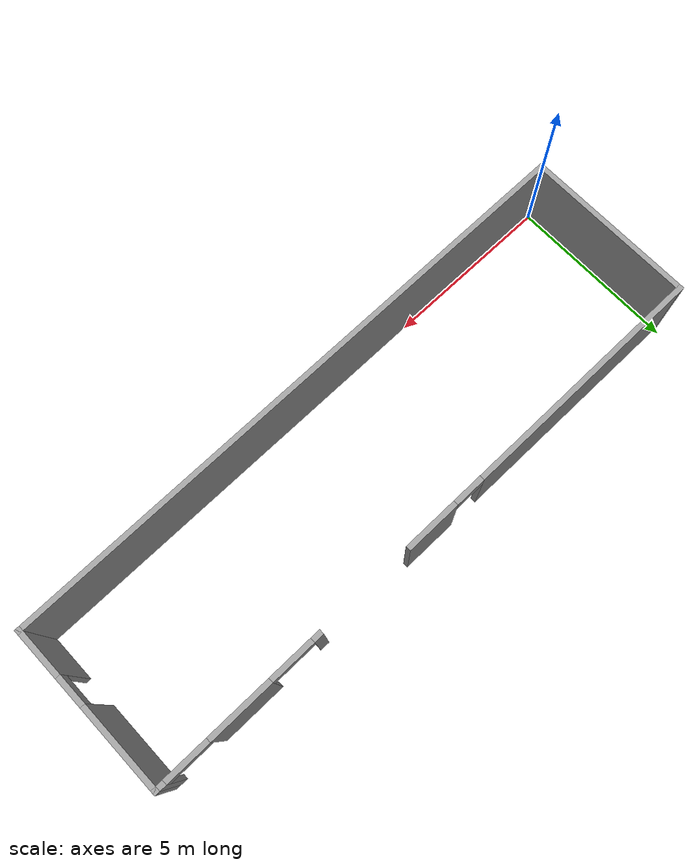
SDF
<?xml version='1.0'?>
<sdf version='1.6'>
  <model name='demoPlaceWallv3'>
    <pose frame=''>8.719 2.353 0 0 -0 0</pose>
    <link name='Wall_0'>
      <collision name='Wall_0_Collision'>
        <geometry>
          <box>
            <size>17.75 0.15 2.5</size>
          </box>
        </geometry>
        <pose frame=''>0 0 1.25 0 -0 0</pose>
      </collision>
      <visual name='Wall_0_Visual'>
        <pose frame=''>0 0 1.25 0 -0 0</pose>
        <geometry>
          <box>
            <size>17.75 0.15 2.5</size>
          </box>
        </geometry>
        <material>
          <script>
            <uri>file://media/materials/scripts/gazebo.material</uri>
            <name>Gazebo/Grey</name>
          </script>
          <ambient>1 1 1 1</ambient>
        </material>
        <meta>
          <layer>0</layer>
        </meta>
      </visual>
      <pose frame=''>0 -2.447 0 0 -0 0</pose>
    </link>
    <link name='Wall_2'>
      <collision name='Wall_2_Collision'>
        <geometry>
          <box>
            <size>5.044 0.15 2.5</size>
          </box>
        </geometry>
        <pose frame=''>0 0 1.25 0 -0 0</pose>
      </collision>
      <visual name='Wall_2_Visual'>
        <pose frame=''>0 0 1.25 0 -0 0</pose>
        <geometry>
          <box>
            <size>5.044 0.15 2.5</size>
          </box>
        </geometry>
        <material>
          <script>
            <uri>file://media/materials/scripts/gazebo.material</uri>
            <name>Gazebo/Grey</name>
          </script>
          <ambient>1 1 1 1</ambient>
        </material>
        <meta>
          <layer>0</layer>
        </meta>
      </visual>
      <pose frame=''>-8.8 0 0 0 -0 1.5708</pose>
    </link>
    <link name='Wall_4'>
      <pose frame=''>0 2.447 0 0 -0 0</pose>
      <visual name='Wall_4_Visual_0'>
        <pose frame=''>-5.222 0 1.25 0 -0 0</pose>
        <geometry>
          <box>
            <size>7.306 0.15 2.5</size>
          </box>
        </geometry>
        <material>
          <script>
            <uri>file://media/materials/scripts/gazebo.material</uri>
            <name>Gazebo/Grey</name>
          </script>
          <ambient>1 1 1 1</ambient>
        </material>
        <meta>
          <layer>0</layer>
        </meta>
      </visual>
      <collision name='Wall_4_Collision_0'>
        <geometry>
          <box>
            <size>7.306 0.15 2.5</size>
          </box>
        </geometry>
        <pose frame=''>-5.222 0 1.25 0 -0 0</pose>
      </collision>
      <visual name='Wall_4_Visual_1'>
        <pose frame=''>0.136 0 1.25 0 -0 0</pose>
        <geometry>
          <box>
            <size>1.61 0.15 2.5</size>
          </box>
        </geometry>
        <material>
          <script>
            <uri>file://media/materials/scripts/gazebo.material</uri>
            <name>Gazebo/Grey</name>
          </script>
          <ambient>1 1 1 1</ambient>
        </material>
        <meta>
          <layer>0</layer>
        </meta>
      </visual>
      <collision name='Wall_4_Collision_1'>
        <geometry>
          <box>
            <size>1.61 0.15 2.5</size>
          </box>
        </geometry>
        <pose frame=''>0.136 0 1.25 0 -0 0</pose>
      </collision>
      <visual name='Wall_4_Visual_2'>
        <pose frame=''>3.886 0 1.25 0 -0 0</pose>
        <geometry>
          <box>
            <size>0.289999 0.15 2.5</size>
          </box>
        </geometry>
        <material>
          <script>
            <uri>file://media/materials/scripts/gazebo.material</uri>
            <name>Gazebo/Grey</name>
          </script>
          <ambient>1 1 1 1</ambient>
        </material>
        <meta>
          <layer>0</layer>
        </meta>
      </visual>
      <collision name='Wall_4_Collision_2'>
        <geometry>
          <box>
            <size>0.289999 0.15 2.5</size>
          </box>
        </geometry>
        <pose frame=''>3.886 0 1.25 0 -0 0</pose>
      </collision>
      <visual name='Wall_4_Visual_3'>
        <pose frame=''>6.281 0 1.25 0 -0 0</pose>
        <geometry>
          <box>
            <size>1.9 0.15 2.5</size>
          </box>
        </geometry>
        <material>
          <script>
            <uri>file://media/materials/scripts/gazebo.material</uri>
            <name>Gazebo/Grey</name>
          </script>
          <ambient>1 1 1 1</ambient>
        </material>
        <meta>
          <layer>0</layer>
        </meta>
      </visual>
      <collision name='Wall_4_Collision_3'>
        <geometry>
          <box>
            <size>1.9 0.15 2.5</size>
          </box>
        </geometry>
        <pose frame=''>6.281 0 1.25 0 -0 0</pose>
      </collision>
      <visual name='Wall_4_Visual_4'>
        <pose frame=''>8.703 0 1.25 0 -0 0</pose>
        <geometry>
          <box>
            <size>0.343999 0.15 2.5</size>
          </box>
        </geometry>
        <material>
          <script>
            <uri>file://media/materials/scripts/gazebo.material</uri>
            <name>Gazebo/Grey</name>
          </script>
          <ambient>1 1 1 1</ambient>
        </material>
        <meta>
          <layer>0</layer>
        </meta>
      </visual>
      <collision name='Wall_4_Collision_4'>
        <geometry>
          <box>
            <size>0.343999 0.15 2.5</size>
          </box>
        </geometry>
        <pose frame=''>8.703 0 1.25 0 -0 0</pose>
      </collision>
      <visual name='Wall_4_Visual_5'>
        <pose frame=''>-1.119 0 2.25 0 -0 0</pose>
        <geometry>
          <box>
            <size>0.9 0.15 0.5</size>
          </box>
        </geometry>
        <material>
          <script>
            <uri>file://media/materials/scripts/gazebo.material</uri>
            <name>Gazebo/Grey</name>
          </script>
          <ambient>1 1 1 1</ambient>
        </material>
        <meta>
          <layer>0</layer>
        </meta>
      </visual>
      <collision name='Wall_4_Collision_5'>
        <geometry>
          <box>
            <size>0.9 0.15 0.5</size>
          </box>
        </geometry>
        <pose frame=''>-1.119 0 2.25 0 -0 0</pose>
      </collision>
      <visual name='Wall_4_Visual_6'>
        <pose frame=''>4.681 0 2.25 0 -0 0</pose>
        <geometry>
          <box>
            <size>1.3 0.15 0.5</size>
          </box>
        </geometry>
        <material>
          <script>
            <uri>file://media/materials/scripts/gazebo.material</uri>
            <name>Gazebo/Grey</name>
          </script>
          <ambient>1 1 1 1</ambient>
        </material>
        <meta>
          <layer>0</layer>
        </meta>
      </visual>
      <collision name='Wall_4_Collision_6'>
        <geometry>
          <box>
            <size>1.3 0.15 0.5</size>
          </box>
        </geometry>
        <pose frame=''>4.681 0 2.25 0 -0 0</pose>
      </collision>
      <visual name='Wall_4_Visual_7'>
        <pose frame=''>7.881 0 2.25 0 -0 0</pose>
        <geometry>
          <box>
            <size>1.3 0.15 0.5</size>
          </box>
        </geometry>
        <material>
          <script>
            <uri>file://media/materials/scripts/gazebo.material</uri>
            <name>Gazebo/Grey</name>
          </script>
          <ambient>1 1 1 1</ambient>
        </material>
        <meta>
          <layer>0</layer>
        </meta>
      </visual>
      <collision name='Wall_4_Collision_7'>
        <geometry>
          <box>
            <size>1.3 0.15 0.5</size>
          </box>
        </geometry>
        <pose frame=''>7.881 0 2.25 0 -0 0</pose>
      </collision>
    </link>
    <link name='Wall_6'>
      <pose frame=''>8.8 0 0 0 -0 -1.5708</pose>
      <visual name='Wall_6_Visual_0'>
        <pose frame=''>-1.2095 0 1.25 0 -0 0</pose>
        <geometry>
          <box>
            <size>2.625 0.15 2.5</size>
          </box>
        </geometry>
        <material>
          <script>
            <uri>file://media/materials/scripts/gazebo.material</uri>
            <name>Gazebo/Grey</name>
          </script>
          <ambient>1 1 1 1</ambient>
        </material>
        <meta>
          <layer>0</layer>
        </meta>
      </visual>
      <collision name='Wall_6_Collision_0'>
        <geometry>
          <box>
            <size>2.625 0.15 2.5</size>
          </box>
        </geometry>
        <pose frame=''>-1.2095 0 1.25 0 -0 0</pose>
      </collision>
      <visual name='Wall_6_Visual_1'>
        <pose frame=''>1.7625 0 1.25 0 -0 0</pose>
        <geometry>
          <box>
            <size>1.519 0.15 2.5</size>
          </box>
        </geometry>
        <material>
          <script>
            <uri>file://media/materials/scripts/gazebo.material</uri>
            <name>Gazebo/Grey</name>
          </script>
          <ambient>1 1 1 1</ambient>
        </material>
        <meta>
          <layer>0</layer>
        </meta>
      </visual>
      <collision name='Wall_6_Collision_1'>
        <geometry>
          <box>
            <size>1.519 0.15 2.5</size>
          </box>
        </geometry>
        <pose frame=''>1.7625 0 1.25 0 -0 0</pose>
      </collision>
      <visual name='Wall_6_Visual_2'>
        <pose frame=''>0.553 0 2.25 0 -0 0</pose>
        <geometry>
          <box>
            <size>0.9 0.15 0.5</size>
          </box>
        </geometry>
        <material>
          <script>
            <uri>file://media/materials/scripts/gazebo.material</uri>
            <name>Gazebo/Grey</name>
          </script>
          <ambient>1 1 1 1</ambient>
        </material>
        <meta>
          <layer>0</layer>
        </meta>
      </visual>
      <collision name='Wall_6_Collision_2'>
        <geometry>
          <box>
            <size>0.9 0.15 0.5</size>
          </box>
        </geometry>
        <pose frame=''>0.553 0 2.25 0 -0 0</pose>
      </collision>
    </link>
    <static>1</static>
  </model>
</sdf>
